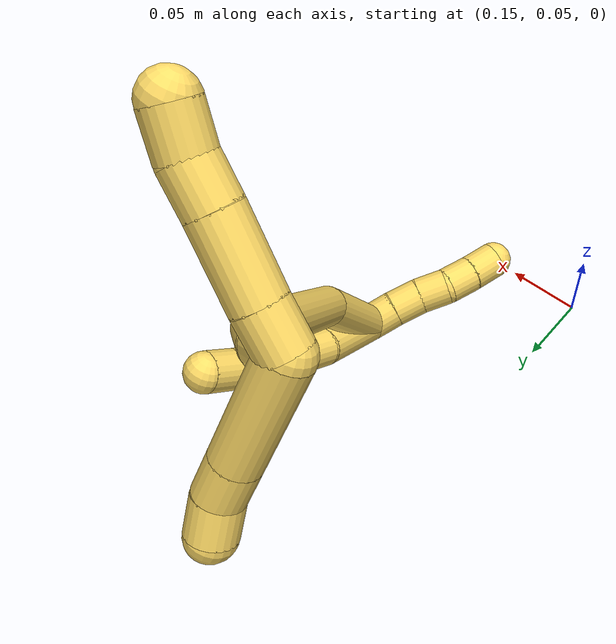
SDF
<sdf version="1.7">
 <world name="default">
  <model name="5">
   <static>0</static>
   <link name="5">
    <collision name="collision-cylinder-e_1_2_8">
     <pose>0.020695 -0.019314 -0.000208 1.58156 0.81987 0.827768</pose>
     <geometry><cylinder><radius>0.0125</radius><length>0.056617</length></cylinder></geometry>
     <surface>
      <friction><ode><mu>1.16</mu><mu2>1.16</mu2><slip1>0</slip1><slip2>0</slip2></ode></friction>
      <contact><ode><kp>1e+06</kp><kd>1</kd><max_vel>0</max_vel><min_depth>0.001</min_depth></ode></contact>
     </surface>
    </collision>
    <visual name="visual-cylinder-e_1_2_8">
     <pose>0.020695 -0.019314 -0.000208 1.58156 0.81987 0.827768</pose>
     <geometry><cylinder><radius>0.0125</radius><length>0.056617</length></cylinder></geometry>
     <material><ambient>1 0.858824 0.4 1</ambient></material>
    </visual>
    <collision name="collision-cylinder-e_2_8_9">
     <pose>0.054125 -0.047027 7.9e-05 1.51189 0.986987 0.938618</pose>
     <geometry><cylinder><radius>0.0125</radius><length>0.030526</length></cylinder></geometry>
     <surface>
      <friction><ode><mu>1.16</mu><mu2>1.16</mu2><slip1>0</slip1><slip2>0</slip2></ode></friction>
      <contact><ode><kp>1e+06</kp><kd>1</kd><max_vel>0</max_vel><min_depth>0.001</min_depth></ode></contact>
     </surface>
    </collision>
    <visual name="visual-cylinder-e_2_8_9">
     <pose>0.054125 -0.047027 7.9e-05 1.51189 0.986987 0.938618</pose>
     <geometry><cylinder><radius>0.0125</radius><length>0.030526</length></cylinder></geometry>
     <material><ambient>1 0.858824 0.4 1</ambient></material>
    </visual>
    <collision name="collision-cylinder-e_3_9_10">
     <pose>0.075613 -0.06048 0.000858 1.51481 1.04641 0.998609</pose>
     <geometry><cylinder><radius>0.0125</radius><length>0.020224</length></cylinder></geometry>
     <surface>
      <friction><ode><mu>1.16</mu><mu2>1.16</mu2><slip1>0</slip1><slip2>0</slip2></ode></friction>
      <contact><ode><kp>1e+06</kp><kd>1</kd><max_vel>0</max_vel><min_depth>0.001</min_depth></ode></contact>
     </surface>
    </collision>
    <visual name="visual-cylinder-e_3_9_10">
     <pose>0.075613 -0.06048 0.000858 1.51481 1.04641 0.998609</pose>
     <geometry><cylinder><radius>0.0125</radius><length>0.020224</length></cylinder></geometry>
     <material><ambient>1 0.858824 0.4 1</ambient></material>
    </visual>
    <collision name="collision-cylinder-e_4_10_11">
     <pose>0.094538 -0.070373 0.001728 1.4501 1.12398 1.01788</pose>
     <geometry><cylinder><radius>0.0125</radius><length>0.022557</length></cylinder></geometry>
     <surface>
      <friction><ode><mu>1.16</mu><mu2>1.16</mu2><slip1>0</slip1><slip2>0</slip2></ode></friction>
      <contact><ode><kp>1e+06</kp><kd>1</kd><max_vel>0</max_vel><min_depth>0.001</min_depth></ode></contact>
     </surface>
    </collision>
    <visual name="visual-cylinder-e_4_10_11">
     <pose>0.094538 -0.070373 0.001728 1.4501 1.12398 1.01788</pose>
     <geometry><cylinder><radius>0.0125</radius><length>0.022557</length></cylinder></geometry>
     <material><ambient>1 0.858824 0.4 1</ambient></material>
    </visual>
    <collision name="collision-cylinder-e_5_11_6">
     <pose>0.113626 -0.079768 0.001615 1.72311 1.09366 1.23392</pose>
     <geometry><cylinder><radius>0.0125</radius><length>0.020076</length></cylinder></geometry>
     <surface>
      <friction><ode><mu>1.16</mu><mu2>1.16</mu2><slip1>0</slip1><slip2>0</slip2></ode></friction>
      <contact><ode><kp>1e+06</kp><kd>1</kd><max_vel>0</max_vel><min_depth>0.001</min_depth></ode></contact>
     </surface>
    </collision>
    <visual name="visual-cylinder-e_5_11_6">
     <pose>0.113626 -0.079768 0.001615 1.72311 1.09366 1.23392</pose>
     <geometry><cylinder><radius>0.0125</radius><length>0.020076</length></cylinder></geometry>
     <material><ambient>1 0.858824 0.4 1</ambient></material>
    </visual>
    <collision name="collision-cylinder-e_1_2_12">
     <pose>-0.006637 0.001345 -0.007358 -2.96072 -0.725785 2.67274</pose>
     <geometry><cylinder><radius>0.0125</radius><length>0.02</length></cylinder></geometry>
     <surface>
      <friction><ode><mu>1.16</mu><mu2>1.16</mu2><slip1>0</slip1><slip2>0</slip2></ode></friction>
      <contact><ode><kp>1e+06</kp><kd>1</kd><max_vel>0</max_vel><min_depth>0.001</min_depth></ode></contact>
     </surface>
    </collision>
    <visual name="visual-cylinder-e_1_2_12">
     <pose>-0.006637 0.001345 -0.007358 -2.96072 -0.725785 2.67274</pose>
     <geometry><cylinder><radius>0.0125</radius><length>0.02</length></cylinder></geometry>
     <material><ambient>1 0.858824 0.4 1</ambient></material>
    </visual>
    <collision name="collision-cylinder-e_2_12_13">
     <pose>-0.020403 0.003927 -0.021619 -2.96448 -0.793515 2.72393</pose>
     <geometry><cylinder><radius>0.0125</radius><length>0.02</length></cylinder></geometry>
     <surface>
      <friction><ode><mu>1.16</mu><mu2>1.16</mu2><slip1>0</slip1><slip2>0</slip2></ode></friction>
      <contact><ode><kp>1e+06</kp><kd>1</kd><max_vel>0</max_vel><min_depth>0.001</min_depth></ode></contact>
     </surface>
    </collision>
    <visual name="visual-cylinder-e_2_12_13">
     <pose>-0.020403 0.003927 -0.021619 -2.96448 -0.793515 2.72393</pose>
     <geometry><cylinder><radius>0.0125</radius><length>0.02</length></cylinder></geometry>
     <material><ambient>1 0.858824 0.4 1</ambient></material>
    </visual>
    <collision name="collision-cylinder-e_3_13_14">
     <pose>-0.03508 0.005106 -0.035081 3.13304 -0.85557 -3.12282</pose>
     <geometry><cylinder><radius>0.0125</radius><length>0.02</length></cylinder></geometry>
     <surface>
      <friction><ode><mu>1.16</mu><mu2>1.16</mu2><slip1>0</slip1><slip2>0</slip2></ode></friction>
      <contact><ode><kp>1e+06</kp><kd>1</kd><max_vel>0</max_vel><min_depth>0.001</min_depth></ode></contact>
     </surface>
    </collision>
    <visual name="visual-cylinder-e_3_13_14">
     <pose>-0.03508 0.005106 -0.035081 3.13304 -0.85557 -3.12282</pose>
     <geometry><cylinder><radius>0.0125</radius><length>0.02</length></cylinder></geometry>
     <material><ambient>1 0.858824 0.4 1</ambient></material>
    </visual>
    <collision name="collision-cylinder-e_4_14_15">
     <pose>-0.050295 0.007907 -0.04739 -2.68059 -0.873429 2.20989</pose>
     <geometry><cylinder><radius>0.0125</radius><length>0.02</length></cylinder></geometry>
     <surface>
      <friction><ode><mu>1.16</mu><mu2>1.16</mu2><slip1>0</slip1><slip2>0</slip2></ode></friction>
      <contact><ode><kp>1e+06</kp><kd>1</kd><max_vel>0</max_vel><min_depth>0.001</min_depth></ode></contact>
     </surface>
    </collision>
    <visual name="visual-cylinder-e_4_14_15">
     <pose>-0.050295 0.007907 -0.04739 -2.68059 -0.873429 2.20989</pose>
     <geometry><cylinder><radius>0.0125</radius><length>0.02</length></cylinder></geometry>
     <material><ambient>1 0.858824 0.4 1</ambient></material>
    </visual>
    <collision name="collision-cylinder-e_5_15_5">
     <pose>-0.06532 0.014075 -0.059047 -2.6306 -0.827038 2.06776</pose>
     <geometry><cylinder><radius>0.0125</radius><length>0.02</length></cylinder></geometry>
     <surface>
      <friction><ode><mu>1.16</mu><mu2>1.16</mu2><slip1>0</slip1><slip2>0</slip2></ode></friction>
      <contact><ode><kp>1e+06</kp><kd>1</kd><max_vel>0</max_vel><min_depth>0.001</min_depth></ode></contact>
     </surface>
    </collision>
    <visual name="visual-cylinder-e_5_15_5">
     <pose>-0.06532 0.014075 -0.059047 -2.6306 -0.827038 2.06776</pose>
     <geometry><cylinder><radius>0.0125</radius><length>0.02</length></cylinder></geometry>
     <material><ambient>1 0.858824 0.4 1</ambient></material>
    </visual>
    <collision name="collision-cylinder-e_1_2_16">
     <pose>0.027437 -0.02246 -0.017967 2.24553 0.761818 1.38934</pose>
     <geometry><cylinder><radius>0.0125</radius><length>0.079499</length></cylinder></geometry>
     <surface>
      <friction><ode><mu>1.16</mu><mu2>1.16</mu2><slip1>0</slip1><slip2>0</slip2></ode></friction>
      <contact><ode><kp>1e+06</kp><kd>1</kd><max_vel>0</max_vel><min_depth>0.001</min_depth></ode></contact>
     </surface>
    </collision>
    <visual name="visual-cylinder-e_1_2_16">
     <pose>0.027437 -0.02246 -0.017967 2.24553 0.761818 1.38934</pose>
     <geometry><cylinder><radius>0.0125</radius><length>0.079499</length></cylinder></geometry>
     <material><ambient>1 0.858824 0.4 1</ambient></material>
    </visual>
    <collision name="collision-cylinder-e_2_16_17">
     <pose>0.087696 -0.090101 -0.05635 1.99518 0.584775 0.872693</pose>
     <geometry><cylinder><radius>0.0125</radius><length>0.118921</length></cylinder></geometry>
     <surface>
      <friction><ode><mu>1.16</mu><mu2>1.16</mu2><slip1>0</slip1><slip2>0</slip2></ode></friction>
      <contact><ode><kp>1e+06</kp><kd>1</kd><max_vel>0</max_vel><min_depth>0.001</min_depth></ode></contact>
     </surface>
    </collision>
    <visual name="visual-cylinder-e_2_16_17">
     <pose>0.087696 -0.090101 -0.05635 1.99518 0.584775 0.872693</pose>
     <geometry><cylinder><radius>0.0125</radius><length>0.118921</length></cylinder></geometry>
     <material><ambient>1 0.858824 0.4 1</ambient></material>
    </visual>
    <collision name="collision-cylinder-e_3_17_18">
     <pose>0.124131 -0.143398 -0.082234 2.16388 0.353631 0.648152</pose>
     <geometry><cylinder><radius>0.0125</radius><length>0.020862</length></cylinder></geometry>
     <surface>
      <friction><ode><mu>1.16</mu><mu2>1.16</mu2><slip1>0</slip1><slip2>0</slip2></ode></friction>
      <contact><ode><kp>1e+06</kp><kd>1</kd><max_vel>0</max_vel><min_depth>0.001</min_depth></ode></contact>
     </surface>
    </collision>
    <visual name="visual-cylinder-e_3_17_18">
     <pose>0.124131 -0.143398 -0.082234 2.16388 0.353631 0.648152</pose>
     <geometry><cylinder><radius>0.0125</radius><length>0.020862</length></cylinder></geometry>
     <material><ambient>1 0.858824 0.4 1</ambient></material>
    </visual>
    <collision name="collision-cylinder-e_4_18_19">
     <pose>0.130023 -0.158583 -0.094493 2.33589 0.228426 0.525891</pose>
     <geometry><cylinder><radius>0.0125</radius><length>0.020128</length></cylinder></geometry>
     <surface>
      <friction><ode><mu>1.16</mu><mu2>1.16</mu2><slip1>0</slip1><slip2>0</slip2></ode></friction>
      <contact><ode><kp>1e+06</kp><kd>1</kd><max_vel>0</max_vel><min_depth>0.001</min_depth></ode></contact>
     </surface>
    </collision>
    <visual name="visual-cylinder-e_4_18_19">
     <pose>0.130023 -0.158583 -0.094493 2.33589 0.228426 0.525891</pose>
     <geometry><cylinder><radius>0.0125</radius><length>0.020128</length></cylinder></geometry>
     <material><ambient>1 0.858824 0.4 1</ambient></material>
    </visual>
    <collision name="collision-cylinder-e_5_19_20">
     <pose>0.13589 -0.174145 -0.105763 2.05638 0.357628 0.582458</pose>
     <geometry><cylinder><radius>0.0125</radius><length>0.020501</length></cylinder></geometry>
     <surface>
      <friction><ode><mu>1.16</mu><mu2>1.16</mu2><slip1>0</slip1><slip2>0</slip2></ode></friction>
      <contact><ode><kp>1e+06</kp><kd>1</kd><max_vel>0</max_vel><min_depth>0.001</min_depth></ode></contact>
     </surface>
    </collision>
    <visual name="visual-cylinder-e_5_19_20">
     <pose>0.13589 -0.174145 -0.105763 2.05638 0.357628 0.582458</pose>
     <geometry><cylinder><radius>0.0125</radius><length>0.020501</length></cylinder></geometry>
     <material><ambient>1 0.858824 0.4 1</ambient></material>
    </visual>
    <collision name="collision-cylinder-e_6_20_21">
     <pose>0.140349 -0.192012 -0.113625 1.91687 0.087223 0.124091</pose>
     <geometry><cylinder><radius>0.0125</radius><length>0.020007</length></cylinder></geometry>
     <surface>
      <friction><ode><mu>1.16</mu><mu2>1.16</mu2><slip1>0</slip1><slip2>0</slip2></ode></friction>
      <contact><ode><kp>1e+06</kp><kd>1</kd><max_vel>0</max_vel><min_depth>0.001</min_depth></ode></contact>
     </surface>
    </collision>
    <visual name="visual-cylinder-e_6_20_21">
     <pose>0.140349 -0.192012 -0.113625 1.91687 0.087223 0.124091</pose>
     <geometry><cylinder><radius>0.0125</radius><length>0.020007</length></cylinder></geometry>
     <material><ambient>1 0.858824 0.4 1</ambient></material>
    </visual>
    <collision name="collision-cylinder-e_7_21_1">
     <pose>0.140071 -0.210092 -0.121875 2.08081 -0.114734 -0.195236</pose>
     <geometry><cylinder><radius>0.0125</radius><length>0.020083</length></cylinder></geometry>
     <surface>
      <friction><ode><mu>1.16</mu><mu2>1.16</mu2><slip1>0</slip1><slip2>0</slip2></ode></friction>
      <contact><ode><kp>1e+06</kp><kd>1</kd><max_vel>0</max_vel><min_depth>0.001</min_depth></ode></contact>
     </surface>
    </collision>
    <visual name="visual-cylinder-e_7_21_1">
     <pose>0.140071 -0.210092 -0.121875 2.08081 -0.114734 -0.195236</pose>
     <geometry><cylinder><radius>0.0125</radius><length>0.020083</length></cylinder></geometry>
     <material><ambient>1 0.858824 0.4 1</ambient></material>
    </visual>
    <collision name="collision-cylinder-e_1_1_22">
     <pose>0.138944 -0.218743 -0.097516 -0.001896 0.000773 -1e-06</pose>
     <geometry><cylinder><radius>0.0125</radius><length>0.058459</length></cylinder></geometry>
     <surface>
      <friction><ode><mu>1.16</mu><mu2>1.16</mu2><slip1>0</slip1><slip2>0</slip2></ode></friction>
      <contact><ode><kp>1e+06</kp><kd>1</kd><max_vel>0</max_vel><min_depth>0.001</min_depth></ode></contact>
     </surface>
    </collision>
    <visual name="visual-cylinder-e_1_1_22">
     <pose>0.138944 -0.218743 -0.097516 -0.001896 0.000773 -1e-06</pose>
     <geometry><cylinder><radius>0.0125</radius><length>0.058459</length></cylinder></geometry>
     <material><ambient>1 0.858824 0.4 1</ambient></material>
    </visual>
    <collision name="collision-cylinder-e_2_22_23">
     <pose>0.139119 -0.219013 -0.057561 0.030396 0.014143 0.000215</pose>
     <geometry><cylinder><radius>0.0125</radius><length>0.021463</length></cylinder></geometry>
     <surface>
      <friction><ode><mu>1.16</mu><mu2>1.16</mu2><slip1>0</slip1><slip2>0</slip2></ode></friction>
      <contact><ode><kp>1e+06</kp><kd>1</kd><max_vel>0</max_vel><min_depth>0.001</min_depth></ode></contact>
     </surface>
    </collision>
    <visual name="visual-cylinder-e_2_22_23">
     <pose>0.139119 -0.219013 -0.057561 0.030396 0.014143 0.000215</pose>
     <geometry><cylinder><radius>0.0125</radius><length>0.021463</length></cylinder></geometry>
     <material><ambient>1 0.858824 0.4 1</ambient></material>
    </visual>
    <collision name="collision-cylinder-e_3_23_4">
     <pose>0.13802 -0.222047 -0.037249 0.27531 -0.124857 -0.017319</pose>
     <geometry><cylinder><radius>0.0125</radius><length>0.020078</length></cylinder></geometry>
     <surface>
      <friction><ode><mu>1.16</mu><mu2>1.16</mu2><slip1>0</slip1><slip2>0</slip2></ode></friction>
      <contact><ode><kp>1e+06</kp><kd>1</kd><max_vel>0</max_vel><min_depth>0.001</min_depth></ode></contact>
     </surface>
    </collision>
    <visual name="visual-cylinder-e_3_23_4">
     <pose>0.13802 -0.222047 -0.037249 0.27531 -0.124857 -0.017319</pose>
     <geometry><cylinder><radius>0.0125</radius><length>0.020078</length></cylinder></geometry>
     <material><ambient>1 0.858824 0.4 1</ambient></material>
    </visual>
    <collision name="collision-cylinder-e_1_1_24">
     <pose>0.146037 -0.213853 -0.133072 -2.47815 0.725011 -1.66694</pose>
     <geometry><cylinder><radius>0.0125</radius><length>0.021458</length></cylinder></geometry>
     <surface>
      <friction><ode><mu>1.16</mu><mu2>1.16</mu2><slip1>0</slip1><slip2>0</slip2></ode></friction>
      <contact><ode><kp>1e+06</kp><kd>1</kd><max_vel>0</max_vel><min_depth>0.001</min_depth></ode></contact>
     </surface>
    </collision>
    <visual name="visual-cylinder-e_1_1_24">
     <pose>0.146037 -0.213853 -0.133072 -2.47815 0.725011 -1.66694</pose>
     <geometry><cylinder><radius>0.0125</radius><length>0.021458</length></cylinder></geometry>
     <material><ambient>1 0.858824 0.4 1</ambient></material>
    </visual>
    <collision name="collision-cylinder-e_2_24_25">
     <pose>0.164978 -0.200127 -0.15116 -2.50031 0.678279 -1.63113</pose>
     <geometry><cylinder><radius>0.0125</radius><length>0.037696</length></cylinder></geometry>
     <surface>
      <friction><ode><mu>1.16</mu><mu2>1.16</mu2><slip1>0</slip1><slip2>0</slip2></ode></friction>
      <contact><ode><kp>1e+06</kp><kd>1</kd><max_vel>0</max_vel><min_depth>0.001</min_depth></ode></contact>
     </surface>
    </collision>
    <visual name="visual-cylinder-e_2_24_25">
     <pose>0.164978 -0.200127 -0.15116 -2.50031 0.678279 -1.63113</pose>
     <geometry><cylinder><radius>0.0125</radius><length>0.037696</length></cylinder></geometry>
     <material><ambient>1 0.858824 0.4 1</ambient></material>
    </visual>
    <collision name="collision-cylinder-e_3_25_26">
     <pose>0.1834 -0.186504 -0.168977 -2.46706 0.704826 -1.61839</pose>
     <geometry><cylinder><radius>0.0125</radius><length>0.020362</length></cylinder></geometry>
     <surface>
      <friction><ode><mu>1.16</mu><mu2>1.16</mu2><slip1>0</slip1><slip2>0</slip2></ode></friction>
      <contact><ode><kp>1e+06</kp><kd>1</kd><max_vel>0</max_vel><min_depth>0.001</min_depth></ode></contact>
     </surface>
    </collision>
    <visual name="visual-cylinder-e_3_25_26">
     <pose>0.1834 -0.186504 -0.168977 -2.46706 0.704826 -1.61839</pose>
     <geometry><cylinder><radius>0.0125</radius><length>0.020362</length></cylinder></geometry>
     <material><ambient>1 0.858824 0.4 1</ambient></material>
    </visual>
    <collision name="collision-cylinder-e_4_26_3">
     <pose>0.195355 -0.177913 -0.182917 -2.69781 0.550533 -1.79359</pose>
     <geometry><cylinder><radius>0.0125</radius><length>0.020483</length></cylinder></geometry>
     <surface>
      <friction><ode><mu>1.16</mu><mu2>1.16</mu2><slip1>0</slip1><slip2>0</slip2></ode></friction>
      <contact><ode><kp>1e+06</kp><kd>1</kd><max_vel>0</max_vel><min_depth>0.001</min_depth></ode></contact>
     </surface>
    </collision>
    <visual name="visual-cylinder-e_4_26_3">
     <pose>0.195355 -0.177913 -0.182917 -2.69781 0.550533 -1.79359</pose>
     <geometry><cylinder><radius>0.0125</radius><length>0.020483</length></cylinder></geometry>
     <material><ambient>1 0.858824 0.4 1</ambient></material>
    </visual>
    <collision name="collision-sphere-3">
     <pose>0.200713 -0.174166 -0.1908 0 -0 0</pose>
     <geometry><sphere><radius>0.0125</radius></sphere></geometry>
     <surface>
      <friction><ode><mu>1.16</mu><mu2>1.16</mu2><slip1>0</slip1><slip2>0</slip2></ode></friction>
      <contact><ode><kp>1e+06</kp><kd>1</kd><max_vel>0</max_vel><min_depth>0.001</min_depth></ode></contact>
     </surface>
    </collision>
    <visual name="visual-sphere-3">
     <pose>0.200713 -0.174166 -0.1908 0 -0 0</pose>
     <geometry><sphere><radius>0.0125</radius></sphere></geometry>
     <material><ambient>1 0.858824 0.4 1</ambient></material>
    </visual>
    <collision name="collision-sphere-26">
     <pose>0.189997 -0.181661 -0.175034 0 -0 0</pose>
     <geometry><sphere><radius>0.0125</radius></sphere></geometry>
     <surface>
      <friction><ode><mu>1.16</mu><mu2>1.16</mu2><slip1>0</slip1><slip2>0</slip2></ode></friction>
      <contact><ode><kp>1e+06</kp><kd>1</kd><max_vel>0</max_vel><min_depth>0.001</min_depth></ode></contact>
     </surface>
    </collision>
    <visual name="visual-sphere-26">
     <pose>0.189997 -0.181661 -0.175034 0 -0 0</pose>
     <geometry><sphere><radius>0.0125</radius></sphere></geometry>
     <material><ambient>1 0.858824 0.4 1</ambient></material>
    </visual>
    <collision name="collision-sphere-25">
     <pose>0.176804 -0.191348 -0.16292 0 -0 0</pose>
     <geometry><sphere><radius>0.0125</radius></sphere></geometry>
     <surface>
      <friction><ode><mu>1.16</mu><mu2>1.16</mu2><slip1>0</slip1><slip2>0</slip2></ode></friction>
      <contact><ode><kp>1e+06</kp><kd>1</kd><max_vel>0</max_vel><min_depth>0.001</min_depth></ode></contact>
     </surface>
    </collision>
    <visual name="visual-sphere-25">
     <pose>0.176804 -0.191348 -0.16292 0 -0 0</pose>
     <geometry><sphere><radius>0.0125</radius></sphere></geometry>
     <material><ambient>1 0.858824 0.4 1</ambient></material>
    </visual>
    <collision name="collision-sphere-24">
     <pose>0.153152 -0.208907 -0.1394 0 -0 0</pose>
     <geometry><sphere><radius>0.0125</radius></sphere></geometry>
     <surface>
      <friction><ode><mu>1.16</mu><mu2>1.16</mu2><slip1>0</slip1><slip2>0</slip2></ode></friction>
      <contact><ode><kp>1e+06</kp><kd>1</kd><max_vel>0</max_vel><min_depth>0.001</min_depth></ode></contact>
     </surface>
    </collision>
    <visual name="visual-sphere-24">
     <pose>0.153152 -0.208907 -0.1394 0 -0 0</pose>
     <geometry><sphere><radius>0.0125</radius></sphere></geometry>
     <material><ambient>1 0.858824 0.4 1</ambient></material>
    </visual>
    <collision name="collision-sphere-4">
     <pose>0.13677 -0.224755 -0.027664 0 -0 0</pose>
     <geometry><sphere><radius>0.0125</radius></sphere></geometry>
     <surface>
      <friction><ode><mu>1.16</mu><mu2>1.16</mu2><slip1>0</slip1><slip2>0</slip2></ode></friction>
      <contact><ode><kp>1e+06</kp><kd>1</kd><max_vel>0</max_vel><min_depth>0.001</min_depth></ode></contact>
     </surface>
    </collision>
    <visual name="visual-sphere-4">
     <pose>0.13677 -0.224755 -0.027664 0 -0 0</pose>
     <geometry><sphere><radius>0.0125</radius></sphere></geometry>
     <material><ambient>1 0.858824 0.4 1</ambient></material>
    </visual>
    <collision name="collision-sphere-23">
     <pose>0.13927 -0.21934 -0.046835 0 -0 0</pose>
     <geometry><sphere><radius>0.0125</radius></sphere></geometry>
     <surface>
      <friction><ode><mu>1.16</mu><mu2>1.16</mu2><slip1>0</slip1><slip2>0</slip2></ode></friction>
      <contact><ode><kp>1e+06</kp><kd>1</kd><max_vel>0</max_vel><min_depth>0.001</min_depth></ode></contact>
     </surface>
    </collision>
    <visual name="visual-sphere-23">
     <pose>0.13927 -0.21934 -0.046835 0 -0 0</pose>
     <geometry><sphere><radius>0.0125</radius></sphere></geometry>
     <material><ambient>1 0.858824 0.4 1</ambient></material>
    </visual>
    <collision name="collision-sphere-22">
     <pose>0.138967 -0.218687 -0.068286 0 -0 0</pose>
     <geometry><sphere><radius>0.0125</radius></sphere></geometry>
     <surface>
      <friction><ode><mu>1.16</mu><mu2>1.16</mu2><slip1>0</slip1><slip2>0</slip2></ode></friction>
      <contact><ode><kp>1e+06</kp><kd>1</kd><max_vel>0</max_vel><min_depth>0.001</min_depth></ode></contact>
     </surface>
    </collision>
    <visual name="visual-sphere-22">
     <pose>0.138967 -0.218687 -0.068286 0 -0 0</pose>
     <geometry><sphere><radius>0.0125</radius></sphere></geometry>
     <material><ambient>1 0.858824 0.4 1</ambient></material>
    </visual>
    <collision name="collision-sphere-1">
     <pose>0.138922 -0.218798 -0.126745 0 -0 0</pose>
     <geometry><sphere><radius>0.0125</radius></sphere></geometry>
     <surface>
      <friction><ode><mu>1.16</mu><mu2>1.16</mu2><slip1>0</slip1><slip2>0</slip2></ode></friction>
      <contact><ode><kp>1e+06</kp><kd>1</kd><max_vel>0</max_vel><min_depth>0.001</min_depth></ode></contact>
     </surface>
    </collision>
    <visual name="visual-sphere-1">
     <pose>0.138922 -0.218798 -0.126745 0 -0 0</pose>
     <geometry><sphere><radius>0.0125</radius></sphere></geometry>
     <material><ambient>1 0.858824 0.4 1</ambient></material>
    </visual>
    <collision name="collision-sphere-21">
     <pose>0.141221 -0.201386 -0.117005 0 -0 0</pose>
     <geometry><sphere><radius>0.0125</radius></sphere></geometry>
     <surface>
      <friction><ode><mu>1.16</mu><mu2>1.16</mu2><slip1>0</slip1><slip2>0</slip2></ode></friction>
      <contact><ode><kp>1e+06</kp><kd>1</kd><max_vel>0</max_vel><min_depth>0.001</min_depth></ode></contact>
     </surface>
    </collision>
    <visual name="visual-sphere-21">
     <pose>0.141221 -0.201386 -0.117005 0 -0 0</pose>
     <geometry><sphere><radius>0.0125</radius></sphere></geometry>
     <material><ambient>1 0.858824 0.4 1</ambient></material>
    </visual>
    <collision name="collision-sphere-6">
     <pose>0.122543 -0.084324 0.000916 0 -0 0</pose>
     <geometry><sphere><radius>0.0125</radius></sphere></geometry>
     <surface>
      <friction><ode><mu>1.16</mu><mu2>1.16</mu2><slip1>0</slip1><slip2>0</slip2></ode></friction>
      <contact><ode><kp>1e+06</kp><kd>1</kd><max_vel>0</max_vel><min_depth>0.001</min_depth></ode></contact>
     </surface>
    </collision>
    <visual name="visual-sphere-6">
     <pose>0.122543 -0.084324 0.000916 0 -0 0</pose>
     <geometry><sphere><radius>0.0125</radius></sphere></geometry>
     <material><ambient>1 0.858824 0.4 1</ambient></material>
    </visual>
    <collision name="collision-sphere-11">
     <pose>0.104709 -0.075211 0.002315 0 -0 0</pose>
     <geometry><sphere><radius>0.0125</radius></sphere></geometry>
     <surface>
      <friction><ode><mu>1.16</mu><mu2>1.16</mu2><slip1>0</slip1><slip2>0</slip2></ode></friction>
      <contact><ode><kp>1e+06</kp><kd>1</kd><max_vel>0</max_vel><min_depth>0.001</min_depth></ode></contact>
     </surface>
    </collision>
    <visual name="visual-sphere-11">
     <pose>0.104709 -0.075211 0.002315 0 -0 0</pose>
     <geometry><sphere><radius>0.0125</radius></sphere></geometry>
     <material><ambient>1 0.858824 0.4 1</ambient></material>
    </visual>
    <collision name="collision-sphere-10">
     <pose>0.084367 -0.065536 0.001141 0 -0 0</pose>
     <geometry><sphere><radius>0.0125</radius></sphere></geometry>
     <surface>
      <friction><ode><mu>1.16</mu><mu2>1.16</mu2><slip1>0</slip1><slip2>0</slip2></ode></friction>
      <contact><ode><kp>1e+06</kp><kd>1</kd><max_vel>0</max_vel><min_depth>0.001</min_depth></ode></contact>
     </surface>
    </collision>
    <visual name="visual-sphere-10">
     <pose>0.084367 -0.065536 0.001141 0 -0 0</pose>
     <geometry><sphere><radius>0.0125</radius></sphere></geometry>
     <material><ambient>1 0.858824 0.4 1</ambient></material>
    </visual>
    <collision name="collision-sphere-9">
     <pose>0.06686 -0.055425 0.000575 0 -0 0</pose>
     <geometry><sphere><radius>0.0125</radius></sphere></geometry>
     <surface>
      <friction><ode><mu>1.16</mu><mu2>1.16</mu2><slip1>0</slip1><slip2>0</slip2></ode></friction>
      <contact><ode><kp>1e+06</kp><kd>1</kd><max_vel>0</max_vel><min_depth>0.001</min_depth></ode></contact>
     </surface>
    </collision>
    <visual name="visual-sphere-9">
     <pose>0.06686 -0.055425 0.000575 0 -0 0</pose>
     <geometry><sphere><radius>0.0125</radius></sphere></geometry>
     <material><ambient>1 0.858824 0.4 1</ambient></material>
    </visual>
    <collision name="collision-sphere-2">
     <geometry><sphere><radius>0.0125</radius></sphere></geometry>
     <surface>
      <friction><ode><mu>1.16</mu><mu2>1.16</mu2><slip1>0</slip1><slip2>0</slip2></ode></friction>
      <contact><ode><kp>1e+06</kp><kd>1</kd><max_vel>0</max_vel><min_depth>0.001</min_depth></ode></contact>
     </surface>
    </collision>
    <visual name="visual-sphere-2">
     <geometry><sphere><radius>0.0125</radius></sphere></geometry>
     <material><ambient>1 0.858824 0.4 1</ambient></material>
    </visual>
    <collision name="collision-sphere-19">
     <pose>0.132302 -0.165654 -0.101282 0 -0 0</pose>
     <geometry><sphere><radius>0.0125</radius></sphere></geometry>
     <surface>
      <friction><ode><mu>1.16</mu><mu2>1.16</mu2><slip1>0</slip1><slip2>0</slip2></ode></friction>
      <contact><ode><kp>1e+06</kp><kd>1</kd><max_vel>0</max_vel><min_depth>0.001</min_depth></ode></contact>
     </surface>
    </collision>
    <visual name="visual-sphere-19">
     <pose>0.132302 -0.165654 -0.101282 0 -0 0</pose>
     <geometry><sphere><radius>0.0125</radius></sphere></geometry>
     <material><ambient>1 0.858824 0.4 1</ambient></material>
    </visual>
    <collision name="collision-sphere-8">
     <pose>0.041391 -0.038629 -0.000416 0 -0 0</pose>
     <geometry><sphere><radius>0.0125</radius></sphere></geometry>
     <surface>
      <friction><ode><mu>1.16</mu><mu2>1.16</mu2><slip1>0</slip1><slip2>0</slip2></ode></friction>
      <contact><ode><kp>1e+06</kp><kd>1</kd><max_vel>0</max_vel><min_depth>0.001</min_depth></ode></contact>
     </surface>
    </collision>
    <visual name="visual-sphere-8">
     <pose>0.041391 -0.038629 -0.000416 0 -0 0</pose>
     <geometry><sphere><radius>0.0125</radius></sphere></geometry>
     <material><ambient>1 0.858824 0.4 1</ambient></material>
    </visual>
    <collision name="collision-sphere-12">
     <pose>-0.013274 0.002691 -0.014716 0 -0 0</pose>
     <geometry><sphere><radius>0.0125</radius></sphere></geometry>
     <surface>
      <friction><ode><mu>1.16</mu><mu2>1.16</mu2><slip1>0</slip1><slip2>0</slip2></ode></friction>
      <contact><ode><kp>1e+06</kp><kd>1</kd><max_vel>0</max_vel><min_depth>0.001</min_depth></ode></contact>
     </surface>
    </collision>
    <visual name="visual-sphere-12">
     <pose>-0.013274 0.002691 -0.014716 0 -0 0</pose>
     <geometry><sphere><radius>0.0125</radius></sphere></geometry>
     <material><ambient>1 0.858824 0.4 1</ambient></material>
    </visual>
    <collision name="collision-sphere-13">
     <pose>-0.027531 0.005162 -0.028523 0 -0 0</pose>
     <geometry><sphere><radius>0.0125</radius></sphere></geometry>
     <surface>
      <friction><ode><mu>1.16</mu><mu2>1.16</mu2><slip1>0</slip1><slip2>0</slip2></ode></friction>
      <contact><ode><kp>1e+06</kp><kd>1</kd><max_vel>0</max_vel><min_depth>0.001</min_depth></ode></contact>
     </surface>
    </collision>
    <visual name="visual-sphere-13">
     <pose>-0.027531 0.005162 -0.028523 0 -0 0</pose>
     <geometry><sphere><radius>0.0125</radius></sphere></geometry>
     <material><ambient>1 0.858824 0.4 1</ambient></material>
    </visual>
    <collision name="collision-sphere-14">
     <pose>-0.04263 0.00505 -0.041638 0 -0 0</pose>
     <geometry><sphere><radius>0.0125</radius></sphere></geometry>
     <surface>
      <friction><ode><mu>1.16</mu><mu2>1.16</mu2><slip1>0</slip1><slip2>0</slip2></ode></friction>
      <contact><ode><kp>1e+06</kp><kd>1</kd><max_vel>0</max_vel><min_depth>0.001</min_depth></ode></contact>
     </surface>
    </collision>
    <visual name="visual-sphere-14">
     <pose>-0.04263 0.00505 -0.041638 0 -0 0</pose>
     <geometry><sphere><radius>0.0125</radius></sphere></geometry>
     <material><ambient>1 0.858824 0.4 1</ambient></material>
    </visual>
    <collision name="collision-sphere-15">
     <pose>-0.057961 0.010764 -0.053141 0 -0 0</pose>
     <geometry><sphere><radius>0.0125</radius></sphere></geometry>
     <surface>
      <friction><ode><mu>1.16</mu><mu2>1.16</mu2><slip1>0</slip1><slip2>0</slip2></ode></friction>
      <contact><ode><kp>1e+06</kp><kd>1</kd><max_vel>0</max_vel><min_depth>0.001</min_depth></ode></contact>
     </surface>
    </collision>
    <visual name="visual-sphere-15">
     <pose>-0.057961 0.010764 -0.053141 0 -0 0</pose>
     <geometry><sphere><radius>0.0125</radius></sphere></geometry>
     <material><ambient>1 0.858824 0.4 1</ambient></material>
    </visual>
    <collision name="collision-sphere-5">
     <pose>-0.072679 0.017386 -0.064953 0 -0 0</pose>
     <geometry><sphere><radius>0.0125</radius></sphere></geometry>
     <surface>
      <friction><ode><mu>1.16</mu><mu2>1.16</mu2><slip1>0</slip1><slip2>0</slip2></ode></friction>
      <contact><ode><kp>1e+06</kp><kd>1</kd><max_vel>0</max_vel><min_depth>0.001</min_depth></ode></contact>
     </surface>
    </collision>
    <visual name="visual-sphere-5">
     <pose>-0.072679 0.017386 -0.064953 0 -0 0</pose>
     <geometry><sphere><radius>0.0125</radius></sphere></geometry>
     <material><ambient>1 0.858824 0.4 1</ambient></material>
    </visual>
    <collision name="collision-sphere-16">
     <pose>0.054873 -0.044919 -0.035935 0 -0 0</pose>
     <geometry><sphere><radius>0.0125</radius></sphere></geometry>
     <surface>
      <friction><ode><mu>1.16</mu><mu2>1.16</mu2><slip1>0</slip1><slip2>0</slip2></ode></friction>
      <contact><ode><kp>1e+06</kp><kd>1</kd><max_vel>0</max_vel><min_depth>0.001</min_depth></ode></contact>
     </surface>
    </collision>
    <visual name="visual-sphere-16">
     <pose>0.054873 -0.044919 -0.035935 0 -0 0</pose>
     <geometry><sphere><radius>0.0125</radius></sphere></geometry>
     <material><ambient>1 0.858824 0.4 1</ambient></material>
    </visual>
    <collision name="collision-sphere-17">
     <pose>0.120519 -0.135284 -0.076765 0 -0 0</pose>
     <geometry><sphere><radius>0.0125</radius></sphere></geometry>
     <surface>
      <friction><ode><mu>1.16</mu><mu2>1.16</mu2><slip1>0</slip1><slip2>0</slip2></ode></friction>
      <contact><ode><kp>1e+06</kp><kd>1</kd><max_vel>0</max_vel><min_depth>0.001</min_depth></ode></contact>
     </surface>
    </collision>
    <visual name="visual-sphere-17">
     <pose>0.120519 -0.135284 -0.076765 0 -0 0</pose>
     <geometry><sphere><radius>0.0125</radius></sphere></geometry>
     <material><ambient>1 0.858824 0.4 1</ambient></material>
    </visual>
    <collision name="collision-sphere-18">
     <pose>0.127744 -0.151512 -0.087704 0 -0 0</pose>
     <geometry><sphere><radius>0.0125</radius></sphere></geometry>
     <surface>
      <friction><ode><mu>1.16</mu><mu2>1.16</mu2><slip1>0</slip1><slip2>0</slip2></ode></friction>
      <contact><ode><kp>1e+06</kp><kd>1</kd><max_vel>0</max_vel><min_depth>0.001</min_depth></ode></contact>
     </surface>
    </collision>
    <visual name="visual-sphere-18">
     <pose>0.127744 -0.151512 -0.087704 0 -0 0</pose>
     <geometry><sphere><radius>0.0125</radius></sphere></geometry>
     <material><ambient>1 0.858824 0.4 1</ambient></material>
    </visual>
    <collision name="collision-sphere-20">
     <pose>0.139478 -0.182637 -0.110245 0 -0 0</pose>
     <geometry><sphere><radius>0.0125</radius></sphere></geometry>
     <surface>
      <friction><ode><mu>1.16</mu><mu2>1.16</mu2><slip1>0</slip1><slip2>0</slip2></ode></friction>
      <contact><ode><kp>1e+06</kp><kd>1</kd><max_vel>0</max_vel><min_depth>0.001</min_depth></ode></contact>
     </surface>
    </collision>
    <visual name="visual-sphere-20">
     <pose>0.139478 -0.182637 -0.110245 0 -0 0</pose>
     <geometry><sphere><radius>0.0125</radius></sphere></geometry>
     <material><ambient>1 0.858824 0.4 1</ambient></material>
    </visual>
    <inertial>
     <pose>0.083205 -0.104173 -0.060522 0 -0 0</pose>
     <mass>0.75</mass>
     <inertia><ixx>0.00027</ixx><ixy>0</ixy><ixz>0</ixz><iyy>0.000196</iyy><iyz>0</iyz><izz>6e-06</izz></inertia>
    </inertial>
   </link>
   <pose>0.248635 0.159629 0.011765 -2.84949 -0.484147 0.774938</pose>
  </model>
 </world>
</sdf>
